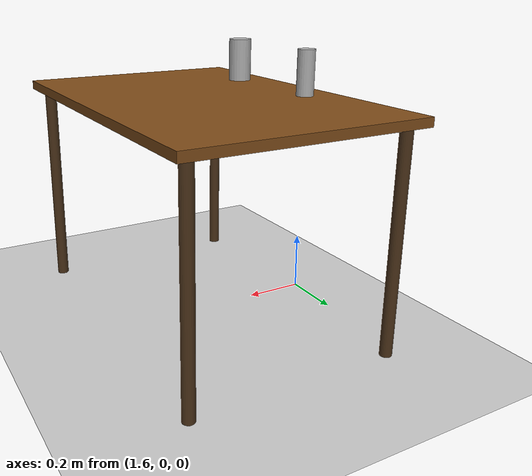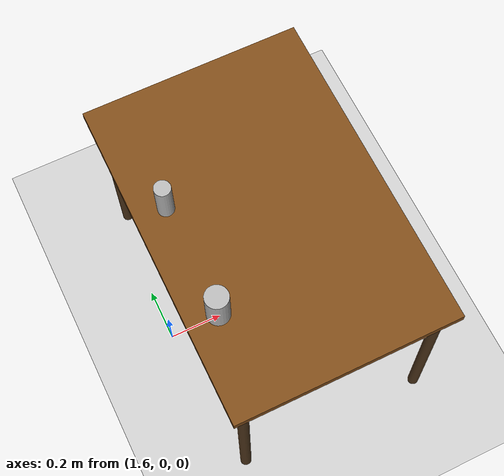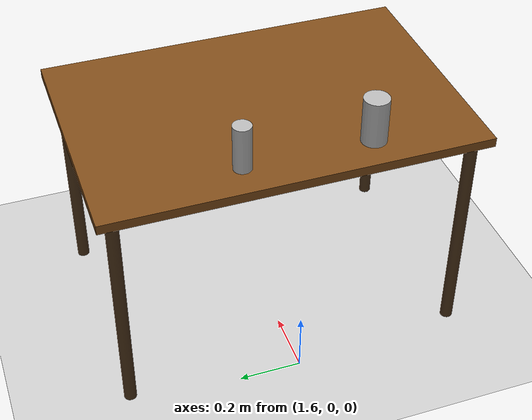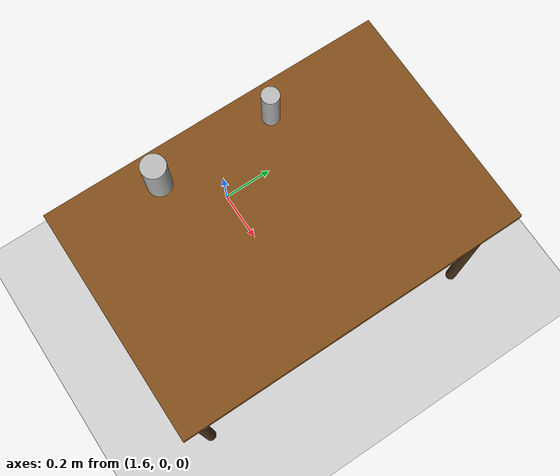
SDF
<sdf version="1.7">
 <world name="default">
  <plugin name="gazebo_ros_state" filename="libgazebo_ros_state.so">
   <ros><namespace>/gazebo</namespace></ros>
   <update_rate>10.0</update_rate>
  </plugin>
  <plugin name="gazebo_link_attacher" filename="libgazebo_link_attacher.so"/>
  <physics type="ode">
   <ode>
    <solver>
     <type>quick</type>
     <iters>20</iters>
     <sor>1</sor>
     <use_dynamic_moi_rescaling>0</use_dynamic_moi_rescaling>
    </solver>
    <constraints>
     <cfm>0</cfm>
     <erp>0.2</erp>
     <contact_max_correcting_vel>100</contact_max_correcting_vel>
     <contact_surface_layer>0</contact_surface_layer>
    </constraints>
   </ode>
   <real_time_update_rate>1000</real_time_update_rate>
   <max_step_size>0.001</max_step_size>
   <real_time_factor>1</real_time_factor>
  </physics>
  <light name="light1" type="directional">
   <pose>-2 0 4 0 -0 0</pose>
   <diffuse>1 1 1 1</diffuse>
   <specular>0.1 0.1 0.1 1</specular>
   <attenuation>
    <range>20</range>
    <constant>0.9</constant>
    <linear>0.01</linear>
    <quadratic>0.001</quadratic>
   </attenuation>
   <direction>0.2 0 -1</direction>
   <spot><inner_angle>0</inner_angle><outer_angle>0</outer_angle><falloff>0</falloff></spot>
  </light>
  <model name="ground_plane">
   <static>1</static>
   <link name="link">
    <collision name="collision">
     <geometry><plane><normal>0 0 1</normal><size>100 100</size></plane></geometry>
     <surface>
      <contact><collide_bitmask>65535</collide_bitmask></contact>
      <friction><ode><mu>100</mu><mu2>50</mu2></ode></friction>
     </surface>
    </collision>
    <visual name="visual">
     <cast_shadows>0</cast_shadows>
     <geometry><plane><normal>0 0 1</normal><size>100 100</size></plane></geometry>
     <material>
      <script><uri>file://media/materials/scripts/gazebo.material</uri><name>Gazebo/Grey</name></script>
     </material>
    </visual>
   </link>
  </model>
  <gravity>0 0 -9.81</gravity>
  <magnetic_field>6e-06 2.3e-05 -4.2e-05</magnetic_field>
  <atmosphere type="adiabatic"/>
  <scene><ambient>0.4 0.4 0.4 1</ambient><background>0.7 0.7 0.7 1</background><shadows>1</shadows></scene>
  <audio><device>default</device></audio>
  <spherical_coordinates>
   <surface_model>EARTH_WGS84</surface_model>
   <latitude_deg>0</latitude_deg>
   <longitude_deg>0</longitude_deg>
   <elevation>0</elevation>
   <heading_deg>0</heading_deg>
  </spherical_coordinates>
  <model name="table">
   <link name="table_top">
    <pose>0 0 0.75 0 -0 0</pose>
    <visual name="visual">
     <geometry><box><size>0.8 1.2 0.03</size></box></geometry>
     <material>
      <ambient>0.5 0.3 0.1 1</ambient>
      <diffuse>0.5 0.3 0.1 1</diffuse>
      <shader type="pixel"/>
      <script><name>ModelPreview_1::table_top::visual_MATERIAL_</name><uri>__default__</uri></script>
     </material>
    </visual>
    <collision name="collision">
     <geometry><box><size>0.8 1.2 0.03</size></box></geometry>
     <surface>
      <friction>
       <ode><mu>1</mu><mu2>1</mu2><fdir1>0 0 0</fdir1><slip1>0</slip1><slip2>0</slip2></ode>
       <torsional>
        <coefficient>1</coefficient>
        <patch_radius>0</patch_radius>
        <surface_radius>0</surface_radius>
        <use_patch_radius>1</use_patch_radius>
        <ode><slip>0</slip></ode>
       </torsional>
      </friction>
      <bounce><restitution_coefficient>0</restitution_coefficient><threshold>1e+06</threshold></bounce>
      <contact>
       <collide_without_contact>0</collide_without_contact>
       <collide_without_contact_bitmask>1</collide_without_contact_bitmask>
       <collide_bitmask>1</collide_bitmask>
       <ode>
        <soft_cfm>0</soft_cfm>
        <soft_erp>0.2</soft_erp>
        <kp>1e+13</kp>
        <kd>1</kd>
        <max_vel>0.01</max_vel>
        <min_depth>0</min_depth>
       </ode>
       <bullet>
        <split_impulse>1</split_impulse>
        <split_impulse_penetration_threshold>-0.01</split_impulse_penetration_threshold>
        <soft_cfm>0</soft_cfm>
        <soft_erp>0.2</soft_erp>
        <kp>1e+13</kp>
        <kd>1</kd>
       </bullet>
      </contact>
     </surface>
    </collision>
   </link>
   <link name="leg1">
    <pose>0.35 0.55 0.375 0 -0 0</pose>
    <visual name="visual">
     <geometry><cylinder><radius>0.02</radius><length>0.75</length></cylinder></geometry>
     <material>
      <ambient>0.3 0.2 0.1 1</ambient>
      <diffuse>0.3 0.2 0.1 1</diffuse>
      <shader type="pixel"/>
      <script><name>ModelPreview_1::leg1::visual_MATERIAL_</name><uri>__default__</uri></script>
     </material>
    </visual>
    <collision name="collision">
     <geometry><cylinder><radius>0.02</radius><length>0.75</length></cylinder></geometry>
     <surface>
      <friction>
       <ode><mu>1</mu><mu2>1</mu2><fdir1>0 0 0</fdir1><slip1>0</slip1><slip2>0</slip2></ode>
       <torsional>
        <coefficient>1</coefficient>
        <patch_radius>0</patch_radius>
        <surface_radius>0</surface_radius>
        <use_patch_radius>1</use_patch_radius>
        <ode><slip>0</slip></ode>
       </torsional>
      </friction>
      <bounce><restitution_coefficient>0</restitution_coefficient><threshold>1e+06</threshold></bounce>
      <contact>
       <collide_without_contact>0</collide_without_contact>
       <collide_without_contact_bitmask>1</collide_without_contact_bitmask>
       <collide_bitmask>1</collide_bitmask>
       <ode>
        <soft_cfm>0</soft_cfm>
        <soft_erp>0.2</soft_erp>
        <kp>1e+13</kp>
        <kd>1</kd>
        <max_vel>0.01</max_vel>
        <min_depth>0</min_depth>
       </ode>
       <bullet>
        <split_impulse>1</split_impulse>
        <split_impulse_penetration_threshold>-0.01</split_impulse_penetration_threshold>
        <soft_cfm>0</soft_cfm>
        <soft_erp>0.2</soft_erp>
        <kp>1e+13</kp>
        <kd>1</kd>
       </bullet>
      </contact>
     </surface>
    </collision>
   </link>
   <link name="leg2">
    <pose>0.35 -0.55 0.375 0 -0 0</pose>
    <visual name="visual">
     <geometry><cylinder><radius>0.02</radius><length>0.75</length></cylinder></geometry>
     <material>
      <ambient>0.3 0.2 0.1 1</ambient>
      <diffuse>0.3 0.2 0.1 1</diffuse>
      <shader type="pixel"/>
      <script><name>ModelPreview_1::leg2::visual_MATERIAL_</name><uri>__default__</uri></script>
     </material>
    </visual>
    <collision name="collision">
     <geometry><cylinder><radius>0.02</radius><length>0.75</length></cylinder></geometry>
     <surface>
      <friction>
       <ode><mu>1</mu><mu2>1</mu2><fdir1>0 0 0</fdir1><slip1>0</slip1><slip2>0</slip2></ode>
       <torsional>
        <coefficient>1</coefficient>
        <patch_radius>0</patch_radius>
        <surface_radius>0</surface_radius>
        <use_patch_radius>1</use_patch_radius>
        <ode><slip>0</slip></ode>
       </torsional>
      </friction>
      <bounce><restitution_coefficient>0</restitution_coefficient><threshold>1e+06</threshold></bounce>
      <contact>
       <collide_without_contact>0</collide_without_contact>
       <collide_without_contact_bitmask>1</collide_without_contact_bitmask>
       <collide_bitmask>1</collide_bitmask>
       <ode>
        <soft_cfm>0</soft_cfm>
        <soft_erp>0.2</soft_erp>
        <kp>1e+13</kp>
        <kd>1</kd>
        <max_vel>0.01</max_vel>
        <min_depth>0</min_depth>
       </ode>
       <bullet>
        <split_impulse>1</split_impulse>
        <split_impulse_penetration_threshold>-0.01</split_impulse_penetration_threshold>
        <soft_cfm>0</soft_cfm>
        <soft_erp>0.2</soft_erp>
        <kp>1e+13</kp>
        <kd>1</kd>
       </bullet>
      </contact>
     </surface>
    </collision>
   </link>
   <link name="leg3">
    <pose>-0.35 0.55 0.375 0 -0 0</pose>
    <visual name="visual">
     <geometry><cylinder><radius>0.02</radius><length>0.75</length></cylinder></geometry>
     <material>
      <ambient>0.3 0.2 0.1 1</ambient>
      <diffuse>0.3 0.2 0.1 1</diffuse>
      <shader type="pixel"/>
      <script><name>ModelPreview_1::leg3::visual_MATERIAL_</name><uri>__default__</uri></script>
     </material>
    </visual>
    <collision name="collision">
     <geometry><cylinder><radius>0.02</radius><length>0.75</length></cylinder></geometry>
     <surface>
      <friction>
       <ode><mu>1</mu><mu2>1</mu2><fdir1>0 0 0</fdir1><slip1>0</slip1><slip2>0</slip2></ode>
       <torsional>
        <coefficient>1</coefficient>
        <patch_radius>0</patch_radius>
        <surface_radius>0</surface_radius>
        <use_patch_radius>1</use_patch_radius>
        <ode><slip>0</slip></ode>
       </torsional>
      </friction>
      <bounce><restitution_coefficient>0</restitution_coefficient><threshold>1e+06</threshold></bounce>
      <contact>
       <collide_without_contact>0</collide_without_contact>
       <collide_without_contact_bitmask>1</collide_without_contact_bitmask>
       <collide_bitmask>1</collide_bitmask>
       <ode>
        <soft_cfm>0</soft_cfm>
        <soft_erp>0.2</soft_erp>
        <kp>1e+13</kp>
        <kd>1</kd>
        <max_vel>0.01</max_vel>
        <min_depth>0</min_depth>
       </ode>
       <bullet>
        <split_impulse>1</split_impulse>
        <split_impulse_penetration_threshold>-0.01</split_impulse_penetration_threshold>
        <soft_cfm>0</soft_cfm>
        <soft_erp>0.2</soft_erp>
        <kp>1e+13</kp>
        <kd>1</kd>
       </bullet>
      </contact>
     </surface>
    </collision>
   </link>
   <link name="leg4">
    <pose>-0.35 -0.55 0.375 0 -0 0</pose>
    <visual name="visual">
     <geometry><cylinder><radius>0.02</radius><length>0.75</length></cylinder></geometry>
     <material>
      <ambient>0.3 0.2 0.1 1</ambient>
      <diffuse>0.3 0.2 0.1 1</diffuse>
      <shader type="pixel"/>
      <script><name>ModelPreview_1::leg4::visual_MATERIAL_</name><uri>__default__</uri></script>
     </material>
    </visual>
    <collision name="collision">
     <geometry><cylinder><radius>0.02</radius><length>0.75</length></cylinder></geometry>
     <surface>
      <friction>
       <ode><mu>1</mu><mu2>1</mu2><fdir1>0 0 0</fdir1><slip1>0</slip1><slip2>0</slip2></ode>
       <torsional>
        <coefficient>1</coefficient>
        <patch_radius>0</patch_radius>
        <surface_radius>0</surface_radius>
        <use_patch_radius>1</use_patch_radius>
        <ode><slip>0</slip></ode>
       </torsional>
      </friction>
      <bounce><restitution_coefficient>0</restitution_coefficient><threshold>1e+06</threshold></bounce>
      <contact>
       <collide_without_contact>0</collide_without_contact>
       <collide_without_contact_bitmask>1</collide_without_contact_bitmask>
       <collide_bitmask>1</collide_bitmask>
       <ode>
        <soft_cfm>0</soft_cfm>
        <soft_erp>0.2</soft_erp>
        <kp>1e+13</kp>
        <kd>1</kd>
        <max_vel>0.01</max_vel>
        <min_depth>0</min_depth>
       </ode>
       <bullet>
        <split_impulse>1</split_impulse>
        <split_impulse_penetration_threshold>-0.01</split_impulse_penetration_threshold>
        <soft_cfm>0</soft_cfm>
        <soft_erp>0.2</soft_erp>
        <kp>1e+13</kp>
        <kd>1</kd>
       </bullet>
      </contact>
     </surface>
    </collision>
   </link>
   <static>1</static>
   <pose>2 0 0 0 -0 0</pose>
  </model>
  <model name="cocacola">
   <static>0</static>
   <link name="link">
    <inertial>
     <mass>0.25</mass>
     <inertia><ixx>0</ixx><ixy>0</ixy><ixz>0</ixz><iyy>0</iyy><iyz>0</iyz><izz>0</izz></inertia>
    </inertial>
    <collision name="collision">
     <pose>0 0 0.075 -3.14159 -0 0</pose>
     <geometry><cylinder><radius>0.04</radius><length>0.15</length></cylinder></geometry>
    </collision>
    <visual name="visual">
     <pose>0 0 0.075 -3.14159 -0 0</pose>
     <geometry><cylinder><radius>0.04</radius><length>0.15</length></cylinder></geometry>
     <material>
      <script>
       <uri>model://cocacola/material/scripts</uri>
       <uri>model://cocacola/material/textures</uri>
       <name>Custom/cocacola</name>
      </script>
     </material>
    </visual>
    <velocity_decay><linear>0</linear><angular>0</angular></velocity_decay>
   </link>
   <pose>1.71052 -0.255126 0.765005 -0.000306 0.000194 -6e-06</pose>
  </model>
  <model name="biscuits_pack">
   <static>0</static>
   <link name="link">
    <inertial>
     <mass>0.25</mass>
     <inertia><ixx>0</ixx><ixy>0</ixy><ixz>0</ixz><iyy>0</iyy><iyz>0</iyz><izz>0</izz></inertia>
    </inertial>
    <collision name="collision">
     <geometry><cylinder><radius>0.029</radius><length>0.15</length></cylinder></geometry>
    </collision>
    <visual name="visual">
     <geometry><cylinder><radius>0.029</radius><length>0.15</length></cylinder></geometry>
     <material>
      <script>
       <uri>model://biscuits_pack/material/scripts</uri>
       <uri>model://biscuits_pack/material/textures</uri>
       <name>Custom/biscuits_pack</name>
      </script>
     </material>
    </visual>
    <velocity_decay><linear>0</linear><angular>0</angular></velocity_decay>
   </link>
   <pose>1.71054 0.149827 0.840007 -0.000539 0.000259 -1.6e-05</pose>
  </model>
 </world>
</sdf>
